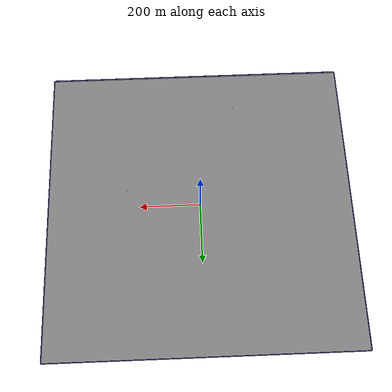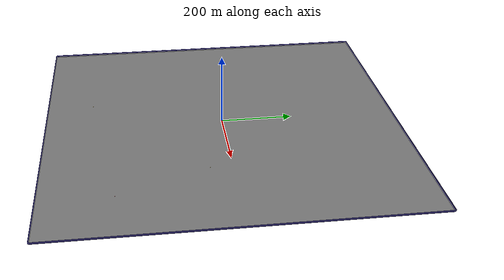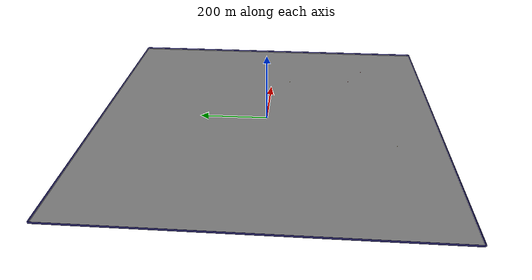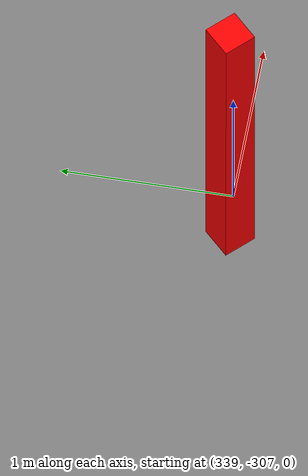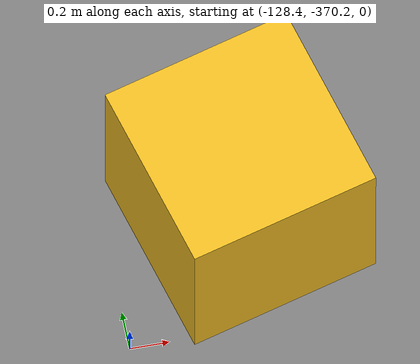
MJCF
<mujoco model="unnamed_model">
  <default>
    <default class="/" />
    <default class="border/" />
    <default class="border_1/" />
    <default class="border_2/" />
    <default class="border_3/" />
    <default class="agentplaceholder/" />
    <default class="placeholder_box/" />
    <default class="tree0/" />
    <default class="tree1/" />
    <default class="stone/" />
    <default class="stone_1/" />
  </default>
  <worldbody>
    <body name="border/">
      <body name="border/border" pos="0 501 2">
        <geom name="border/border_geom" class="border/" type="box" size="500 1 2" rgba="0.035000000000000003 0.016 0.28999999999999998 1" />
      </body>
    </body>
    <body name="border_1/">
      <body name="border_1/border" pos="0 -501 2">
        <geom name="border_1/border_geom" class="border_1/" type="box" size="500 1 2" rgba="0.035000000000000003 0.016 0.28999999999999998 1" />
      </body>
    </body>
    <body name="border_2/">
      <body name="border_2/border" pos="501 0 2">
        <geom name="border_2/border_geom" class="border_2/" type="box" size="1 500 2" rgba="0.035000000000000003 0.016 0.28999999999999998 1" />
      </body>
    </body>
    <body name="border_3/">
      <body name="border_3/border" pos="-501 0 2">
        <geom name="border_3/border_geom" class="border_3/" type="box" size="1 500 2" rgba="0.035000000000000003 0.016 0.28999999999999998 1" />
      </body>
    </body>
    <body euler="0 0 165.97786862734296" name="agentplaceholder/">
      <joint name="agentplaceholder/boxagent_freeJoint/" class="/" type="free" />
      <body name="agentplaceholder/agentplaceholder" pos="-250 0 3" euler="0 0 0">
        <geom name="agentplaceholder/boxagent_geom" class="agentplaceholder/" type="box" size="0.5 0.5 0.5" rgba="0.94899999999999995 0.74509999999999998 0.1333 1" euler="0 0 0" />
      </body>
    </body>
    <body name="placeholder_box/">
      <body name="placeholder_box/placeholder_box" pos="-127.7296 -369.62369999999999 0.5" euler="0 0 105.24678908566159">
        <geom name="placeholder_box/box_geom" class="placeholder_box/" type="box" size="0.5 0.5 0.5" rgba="0.94899999999999995 0.74509999999999998 0.1333 1" euler="0 0 0" />
      </body>
    </body>
    <body name="tree0/">
      <body name="tree0/tree0" pos="338.74110000000002 -307.02629999999999 0.10000000000000001" euler="0 0 45.036477360678617">
        <geom name="tree0/tree_geom" class="tree0/" type="box" size="0.10000000000000001 0.10000000000000001 2" rgba="1 0 0 1" />
      </body>
    </body>
    <body name="tree1/">
      <body name="tree1/tree1" pos="258.45479999999998 -257.85789999999997 0.10000000000000001" euler="0 0 39.410178963712553">
        <geom name="tree1/tree_geom" class="tree1/" type="box" size="0.10000000000000001 0.10000000000000001 2" rgba="1 0 0 1" />
      </body>
    </body>
    <body name="stone/">
      <body name="stone/stone" pos="374.30775 -374.09070000000003 0.10000000000000001" euler="0 0 89.110537755246071">
        <geom name="stone/stone_geom" class="stone/" type="box" size="0.10000000000000001 0.10000000000000001 2" rgba="1 0 0 1" />
      </body>
    </body>
    <body name="stone_1/">
      <body name="stone_1/stone" pos="162.851 -7.199799999999982 0.10000000000000001" euler="0 0 163.79569588988613">
        <geom name="stone_1/stone_geom" class="stone_1/" type="box" size="0.10000000000000001 0.10000000000000001 2" rgba="1 0 0 1" />
      </body>
    </body>
    <geom name="base_plane" class="/" type="plane" size="500 500 0.10000000000000001" />
  </worldbody>
</mujoco>
